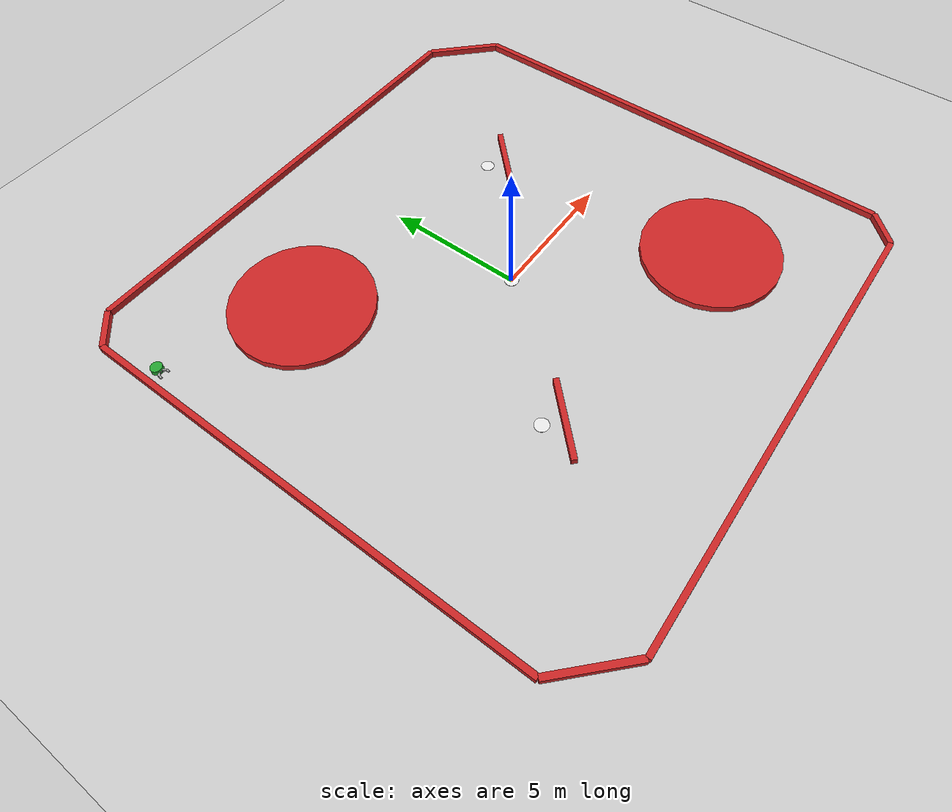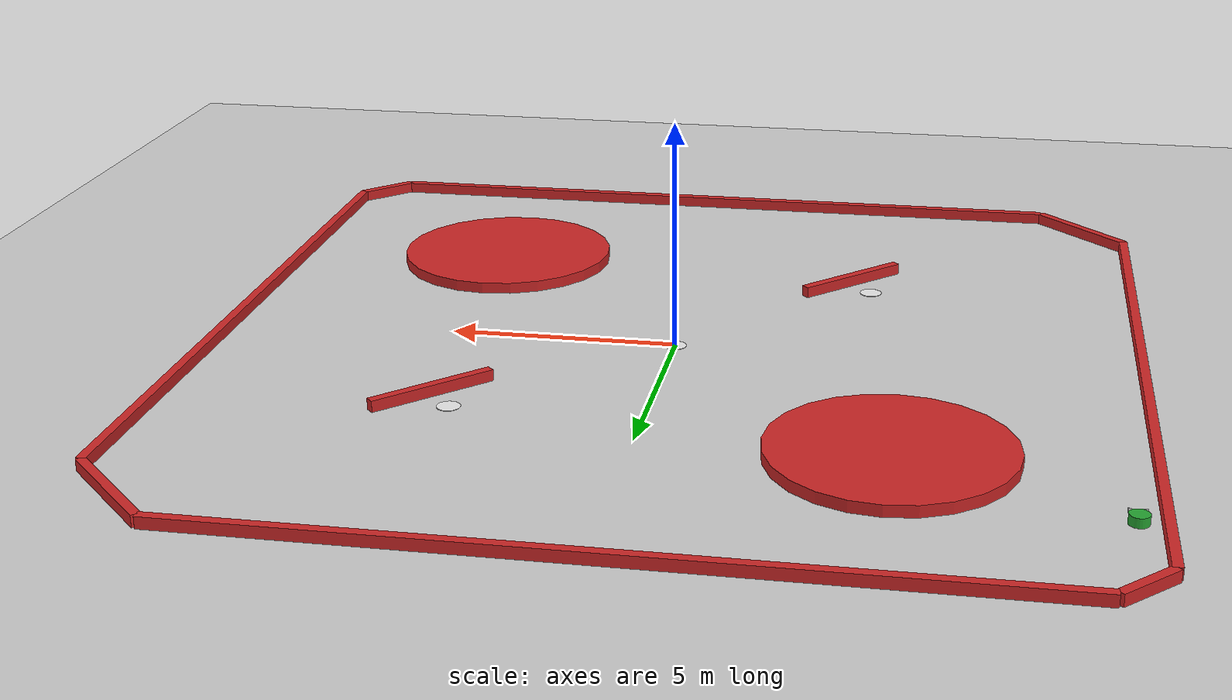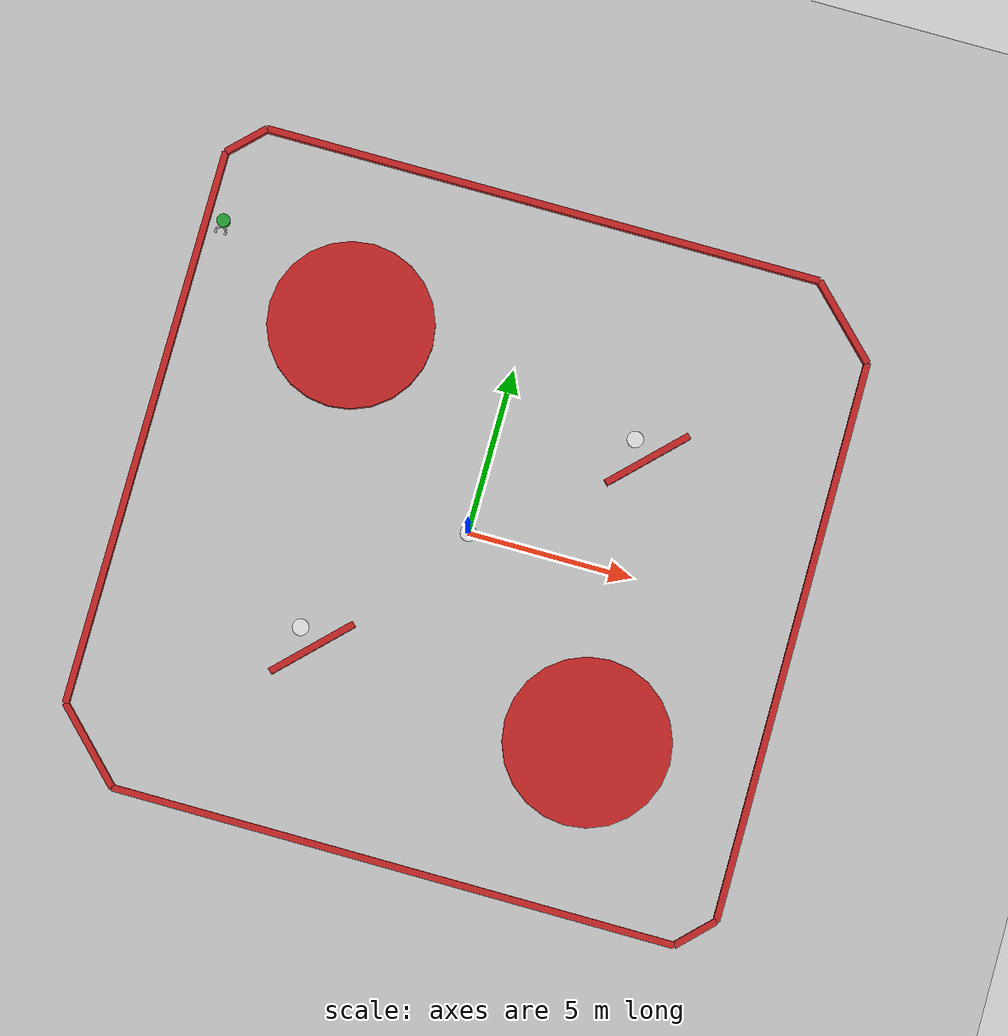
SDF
<?xml version="1.0"?>
<sdf version="1.4">
  <world name="default">
    <scene>
      <shadows>0</shadows>
    </scene>
    <!-- World Camera -->
    <gui>
      <camera name='camera_view'>
	<pose>0 0 35 0 1.57079 1.57079</pose>
      </camera>
    </gui>

    <!-- Ground -->
    <include>
      <uri>model://ground_plane</uri>
    </include>

    <!-- Global light source -->
     <include>
      <uri>model://sun</uri>
    </include>

    <!-- Robots Team A-->
    <include>
      <pose>-9.5 7 0 0 0  -1.57079</pose>
      <name>Bug</name>
      <uri>model://SDIC_GreenBug</uri>
    </include>

    <!-- Robots Team B-->

    <!-- Wall -->
    <include>
        <uri>model://TM_Wall</uri>
    </include>

  </world>
</sdf>

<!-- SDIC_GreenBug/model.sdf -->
<sdf version='1.4'>
  <!-- Robot model -->
  <model name="SDIC_Bug">
    <!-- Body elements -->
    <link name='bug'>
      <pose>0 0 .1 0 0 0</pose>
      <inertial>
	<mass>5</mass>
	<inertia>
	  <ixx>1</ixx>
	  <ixy>0</ixy>
	  <ixz>0</ixz>
	  <iyy>1</iyy>
	  <iyz>0</iyz>
	  <izz>1</izz>
	</inertia>
      </inertial>
      <collision name='collision'>
	<geometry>
	  <cylinder>
	    <radius>.2</radius>
	    <length>.2</length>
	  </cylinder>
	</geometry>
	<surface>
	  <friction>
	    <ode>
	      <mu>0.1</mu>
	      <mu2>0</mu2>
	      <slip1>0.0</slip1>
	      <slip2>0.0</slip2>
	    </ode>
	  </friction>
	</surface>
      </collision>

      <visual name='visual'>
	<geometry>
	  <cylinder>
	    <radius>.2</radius>
	    <length>.2</length>
	  </cylinder>
	</geometry>
	<material>
	  <script>
	    <uri>file://media/materials/scripts/gazebo.material</uri>
	    <name>Gazebo/Green</name>
	  </script>
	</material>
      </visual>

      <!-- Sensors -->
      <!-- Proximity sensor -->
      <sensor name="laser" type="ray">
	<pose>0 0 0.075 0 0 0 </pose>
	<ray>
	<scan>
	  <horizontal>
	    <samples>32</samples>
	    <resolution>1</resolution>
	    <min_angle>-3</min_angle>
	    <max_angle>3</max_angle>
	  </horizontal>
	</scan>
	<range>
	  <min>0.205</min>
	  <max>2.0</max>
	  <resolution>0.01</resolution>
	</range>
	<noise>
	  <type>gaussian</type>
	  <mean>0.0</mean>
	  <stddev>0.02</stddev>
	</noise>
      </ray>
      <always_on>1</always_on>
      <update_rate>25</update_rate>
      <visualize>0</visualize>
      </sensor>

      <!-- Proximity sensor -->
      <sensor name="laser_target" type="ray">
	<pose>0 0 0.25 0 0 0 </pose>
	<ray>
	<scan>
	  <horizontal>
	    <samples>32</samples>
	    <resolution>1</resolution>
	    <min_angle>-3</min_angle>
	    <max_angle>3</max_angle>
	  </horizontal>
	</scan>
	<range>
	  <min>0.26</min>
	  <max>2.5</max>
	  <resolution>0.01</resolution>
	</range>
	<noise>
	  <type>gaussian</type>
	  <mean>0.0</mean>
	  <stddev>0.02</stddev>
	</noise>
      </ray>
      <always_on>1</always_on>
      <update_rate>25</update_rate>
      <visualize>0</visualize>
      </sensor>
      <!-- Proximity sensor Gripper -->
      <sensor name="laser_gripper" type="ray">
	<pose>0.19 0 -0.02 0 0 0 </pose>
	<ray>
	<scan>
	  <horizontal>
	    <samples>16</samples>
	    <resolution>1</resolution>
	    <min_angle>-1</min_angle>
	    <max_angle>1</max_angle>
	  </horizontal>
	</scan>
	<range>
	  <min>0.0155</min>
	  <max>0.2</max>
	  <resolution>0.01</resolution>
	</range>
	<noise>
	  <type>gaussian</type>
	  <mean>0.0</mean>
	  <stddev>0.005</stddev>
	</noise>
	</ray>
	<always_on>0</always_on>
	<update_rate>25</update_rate>
	<visualize>0</visualize>
      </sensor>

    <sensor name="camera" type="camera">
      <pose>0.125 0 0.25 0 0.57 0</pose>
      <camera>
	<horizontal_fov>1.0047</horizontal_fov>
          <image>
            <width>32</width>
            <height>28</height>
          </image>
          <clip>
            <near>0.15</near>
            <far>20</far>
          </clip>
   </camera>
      <always_on>1</always_on>
      <update_rate>30</update_rate>
      <visualize>0</visualize>
    </sensor>
    </link>
`
    <include>
      <uri>model://SDIC_Gripper</uri>
      <pose>0.17 0 .08 0 0 0</pose>
    </include>

    <joint name="arm_gripper_joint" type="revolute">
      <parent>bug</parent>
      <child>SDIC_Gripper::palm</child>
      <axis>
	<limit>
	  <lower>0</lower>
	  <upper>0</upper>
	</limit>
	<xyz>0 0 1</xyz>
      </axis>
    </joint>

    <plugin name="model_push" filename="libvel_plugin.so" />
</model>
</sdf>

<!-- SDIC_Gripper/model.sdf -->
<sdf version="1.4">
  <model name="SDIC_Gripper">
    <link name="palm">
      <pose>0.0 0.0 0 0 0 0</pose>
      <inertial>
        <mass>0.002</mass>
      </inertial>
      <collision name="collision">
        <geometry>
          <box>
            <size>0.06 0.1 0.06</size>
          </box>
        </geometry>
        <surface>
	  <friction>
            <ode>
              <mu>0.1</mu>
              <mu2>0</mu2>
            </ode>
          </friction>
          <contact>
            <ode>
              <max_vel>0.0</max_vel>
            </ode>
          </contact>
        </surface>
      </collision>
      <visual name="visual">
        <geometry>
          <box>
            <size>0.06 0.1 0.06</size>
          </box>
        </geometry>
      </visual>
    </link>
    <link name="left_finger">
      <pose>0.05 0.1 0 0 0 -0.78539</pose>
      <inertial>
        <mass>0.001</mass>
	<inertia>
	  <ixx>0.001</ixx>
	  <ixy>0</ixy>
	  <ixz>0</ixz>
	  <iyy>0.001</iyy>
	  <iyz>0</iyz>
	  <izz>0.001</izz>
	</inertia>
      </inertial>
      <collision name="collision">
        <geometry>
          <box>
            <size>0.06 0.15 0.06</size>
          </box>
        </geometry>
        <surface>
          <friction>
            <ode>
              <mu>0.1</mu>
              <mu2>0</mu2>
            </ode>
          </friction>
          <contact>
            <ode>
              <max_vel>0.0</max_vel>
            </ode>
          </contact>
        </surface>
      </collision>
      <visual name="visual">
        <geometry>
          <box>
            <size>0.06 0.15 0.06</size>
          </box>
        </geometry>
      </visual>
    </link>
    <link name="left_finger_tip">
      <pose>0.168 0.15 0 0 0 1.5707</pose>
      <inertial>
        <mass>0.001</mass>
	<inertia>
	  <ixx>0.001</ixx>
	  <ixy>0</ixy>
	  <ixz>0</ixz>
	  <iyy>0.001</iyy>
	  <iyz>0</iyz>
	  <izz>0.001</izz>
	</inertia>
      </inertial>
      <collision name="collision">
        <geometry>
          <box>
            <size>0.06 0.1 0.06</size>
          </box>
        </geometry>
        <surface>
          <friction>
            <ode>
              <mu>0.1</mu>
              <mu2>0</mu2>
            </ode>
          </friction>
          <contact>
            <ode>
              <max_vel>0.0</max_vel>
            </ode>
          </contact>
        </surface>
      </collision>
      <visual name="visual">
        <geometry>
          <box>
            <size>0.06 0.1 0.06</size>
          </box>
        </geometry>
      </visual>
    </link>
    <link name="right_finger">
      <pose>0.05 -0.1 0 0 0 .78539</pose>
      <inertial>
        <mass>0.001</mass>
	<inertia>
	  <ixx>0.001</ixx>
	  <ixy>0</ixy>
	  <ixz>0</ixz>
	  <iyy>0.001</iyy>
	  <iyz>0</iyz>
	  <izz>0.001</izz>
	</inertia>
      </inertial>
      <collision name="collision">
        <geometry>
          <box>
            <size>0.06 0.15 0.06</size>
          </box>
        </geometry>
        <surface>
          <friction>
            <ode>
              <mu>0.1</mu>
              <mu2>0</mu2>
            </ode>
          </friction>
          <contact>
            <ode>
              <max_vel>0.0</max_vel>
            </ode>
          </contact>
        </surface>
      </collision>
      <visual name="visual">
        <geometry>
          <box>
            <size>0.06 0.15 0.06</size>
          </box>
        </geometry>
      </visual>
    </link>
    <link name="right_finger_tip">
      <pose>0.168 -0.15 0 0 0 1.5707</pose>
      <inertial>
        <mass>0.001</mass>
	<inertia>
	  <ixx>0.001</ixx>
	  <ixy>0</ixy>
	  <ixz>0</ixz>
	  <iyy>0.001</iyy>
	  <iyz>0</iyz>
	  <izz>0.001</izz>
	</inertia>
      </inertial>
      <collision name="collision">
        <geometry>
          <box>
            <size>0.06 0.1 0.06</size>
          </box>
        </geometry>
        <surface>
          <friction>
            <ode>
              <mu>0.1</mu>
              <mu2>0</mu2>
            </ode>
          </friction>
          <contact>
            <ode>
              <max_vel>0.0</max_vel>
            </ode>
          </contact>
        </surface>
      </collision>
      <visual name="visual">
        <geometry>
          <box>
            <size>0.06 0.1 0.06</size>
          </box>
        </geometry>
      </visual>
    </link>

    <joint name="left_finger" type="revolute">
      <pose>0 -0.075 0 0 0 0</pose>
      <child>left_finger</child>
      <parent>palm</parent>
      <axis>
        <limit><lower>-0.2</lower><upper>0.4</upper></limit>
        <xyz>0 0 -1</xyz>
      </axis>
    </joint>
    <joint name="left_finger_tip" type="revolute">
      <pose>0 0.05 0 0 0 0</pose>
      <child>left_finger_tip</child>
      <parent>left_finger</parent>
      <axis>
        <limit><lower>0</lower><upper>0.4</upper></limit>
        <xyz>0 0 -1</xyz>
      </axis>
    </joint>
    <joint name="right_finger" type="revolute">
      <pose>0 0.075 0 0 0 0</pose>
      <child>right_finger</child>
      <parent>palm</parent>
      <axis>
        <limit><lower>-0.2</lower><upper>0.4</upper></limit>
        <xyz>0 0 1</xyz>
      </axis>
    </joint>
    <joint name="right_finger_tip" type="revolute">
      <pose>0 0.05 0 0 0 0</pose>
      <child>right_finger_tip</child>
      <parent>right_finger</parent>
      <axis>
        <limit><lower>0</lower><upper>0.4</upper></limit>
        <xyz>0 0 1</xyz>
      </axis>
    </joint>

  </model>
</sdf>

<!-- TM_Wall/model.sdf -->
<sdf version='1.4'>
  <model name='Wall'>
    <link name='Wall_1'>
      <collision name='Wall_1_Collision'>
        <geometry>
          <box>
            <size>17 0.2 0.24999</size>
          </box>
        </geometry>
        <pose>0 0 0.124999 0 -0 0</pose>
      </collision>
      <visual name='Wall_1_Visual'>
        <pose>0 0 0.124999 0 -0 0</pose>
        <geometry>
          <box>
            <size>17 0.2 0.24999</size>
          </box>
        </geometry>
        <material>
          <script>
            <uri>file://media/materials/scripts/gazebo.material</uri>
            <name>Gazebo/Red</name>
          </script>
        </material>
      </visual>
      <velocity_decay>
        <linear>0</linear>
        <angular>0</angular>
      </velocity_decay>
      <pose>-10 0.5 0 0 0 -1.5708</pose>
    </link>

    <link name='Wall_2'>
      <collision name='Wall_2_Collision'>
        <geometry>
          <box>
            <size>17 0.2 0.24999</size>
          </box>
        </geometry>
        <pose>0 0 0.124999 0 -0 0</pose>
      </collision>
      <visual name='Wall_2_Visual'>
        <pose>0 0 0.124999 0 -0 0</pose>
        <geometry>
          <box>
            <size>17 0.2 0.24999</size>
          </box>
         </geometry>
        <material>
          <script>
            <uri>file://media/materials/scripts/gazebo.material</uri>
            <name>Gazebo/Red</name>
          </script>
        </material>
      </visual>
      <velocity_decay>
        <linear>0</linear>
        <angular>0</angular>
      </velocity_decay>
      <pose>0.5 -10 0 0 0 0</pose>
    </link>

 <link name='Wall_3'>
      <collision name='Wall_3_Collision'>
        <geometry>
          <box>
            <size>17 0.2 0.24999</size>
          </box>
        </geometry>
        <pose>0 0 0.124999 0 -0 0</pose>
      </collision>
      <visual name='Wall_3_Visual'>
        <pose>0 0 0.124999 0 -0 0</pose>
        <geometry>
          <box>
            <size>17 0.2 0.24999</size>
          </box>
        </geometry>
        <material>
          <script>
            <uri>file://media/materials/scripts/gazebo.material</uri>
            <name>Gazebo/Red</name>
          </script>
        </material>
      </visual>
      <velocity_decay>
        <linear>0</linear>
        <angular>0</angular>
      </velocity_decay>
      <pose>10 -0.5 0 0 0 -1.5708</pose>
    </link>

    <link name='Wall_4'>
      <collision name='Wall_4_Collision'>
        <geometry>
          <box>
            <size>17 0.2 0.24999</size>
          </box>
        </geometry>
        <pose>0 0 0.124999 0 -0 0</pose>
      </collision>
      <visual name='Wall_4_Visual'>
        <pose>0 0 0.124999 0 -0 0</pose>
        <geometry>
          <box>
            <size>17 0.2 0.24999</size>
          </box>
        </geometry>
        <material>
          <script>
            <uri>file://media/materials/scripts/gazebo.material</uri>
            <name>Gazebo/Red</name>
          </script>
        </material>
      </visual>
      <velocity_decay>
        <linear>0</linear>
        <angular>0</angular>
      </velocity_decay>
      <pose>-0.5 10 0 0 0 0</pose>
    </link>

    <link name='Wall_5'>
      <collision name='Wall_5_Collision'>
        <geometry>
          <box>
            <size> 2.828427 0.2 0.24999</size>
          </box>
        </geometry>
        <pose>0 0 0.124999 0 -0 0</pose>
      </collision>
      <visual name='Wall_5_Visual'>
        <pose>0 0 0.124999 0 -0 0</pose>
        <geometry>
          <box>
            <size>2.828427 0.2 0.24999</size>
          </box>
        </geometry>
        <material>
          <script>
            <uri>file://media/materials/scripts/gazebo.material</uri>
            <name>Gazebo/Red</name>
          </script>
        </material>
      </visual>
      <velocity_decay>
        <linear>0</linear>
        <angular>0</angular>
      </velocity_decay>
      <pose>9 9 0 0 0 -0.78539</pose>
    </link>

    <link name='Wall_6'>
      <collision name='Wall_6_Collision'>
        <geometry>
          <box>
            <size> 2.828427 0.2 0.24999</size>
          </box>
        </geometry>
        <pose>0 0 0.124999 0 -0 0</pose>
      </collision>
      <visual name='Wall_6_Visual'>
        <pose>0 0 0.124999 0 -0 0</pose>
        <geometry>
          <box>
            <size>2.828427 0.2 0.24999</size>
          </box>
        </geometry>
        <material>
          <script>
            <uri>file://media/materials/scripts/gazebo.material</uri>
            <name>Gazebo/Red</name>
          </script>
        </material>
      </visual>
      <velocity_decay>
        <linear>0</linear>
        <angular>0</angular>
      </velocity_decay>
      <pose>-9 -9 0 0 0 -0.78539</pose>
    </link>
<link name='Wall_6'>
      <collision name='Wall_6_Collision'>
        <geometry>
          <box>
            <size> 2.828427 0.2 0.24999</size>
          </box>
        </geometry>
        <pose>0 0 0.124999 0 -0 0</pose>
      </collision>
      <visual name='Wall_6_Visual'>
        <pose>0 0 0.124999 0 -0 0</pose>
        <geometry>
          <box>
            <size>2.828427 0.2 0.24999</size>
          </box>
        </geometry>
        <material>
          <script>
            <uri>file://media/materials/scripts/gazebo.material</uri>
            <name>Gazebo/Red</name>
          </script>
        </material>
      </visual>
      <velocity_decay>
        <linear>0</linear>
        <angular>0</angular>
      </velocity_decay>
      <pose>-9 -9 0 0 0 -0.78539</pose>
    </link>

    <link name='Wall_7'>
      <collision name='Wall_7_Collision'>
        <geometry>
          <box>
            <size> 1.414215 0.2 0.24999</size>
          </box>
        </geometry>
        <pose>0 0 0.124999 0 -0 0</pose>
      </collision>
      <visual name='Wall_7_Visual'>
        <pose>0 0 0.124999 0 -0 0</pose>
        <geometry>
          <box>
            <size>1.414215 0.2 0.24999</size>
          </box>
        </geometry>
        <material>
          <script>
            <uri>file://media/materials/scripts/gazebo.material</uri>
            <name>Gazebo/Red</name>
          </script>
        </material>
      </visual>
      <velocity_decay>
        <linear>0</linear>
        <angular>0</angular>
      </velocity_decay>
      <pose>-9.5 9.5 0 0 0 0.78539</pose>
    </link>

    <link name='Wall_8'>
      <collision name='Wall_8_Collision'>
        <geometry>
          <box>
            <size> 1.414215 0.2 0.24999</size>
          </box>
        </geometry>
        <pose>0 0 0.124999 0 -0 0</pose>
      </collision>
      <visual name='Wall_7_Visual'>
        <pose>0 0 0.124999 0 -0 0</pose>
        <geometry>
          <box>
            <size>1.414215 0.2 0.24999</size>
          </box>
        </geometry>
        <material>
          <script>
            <uri>file://media/materials/scripts/gazebo.material</uri>
            <name>Gazebo/Red</name>
          </script>
        </material>
      </visual>
      <velocity_decay>
        <linear>0</linear>
        <angular>0</angular>
      </velocity_decay>
      <pose> 9.5 -9.5 0 0 0 0.78539</pose>
    </link>

<link name='Wall_9'>
      <collision name='Wall_9_Collision'>
        <geometry>
          <box>
            <size> 2.828430 0.2 0.24999</size>
          </box>
        </geometry>
        <pose>0 0 0.124999 0 -0 0</pose>
      </collision>
      <visual name='Wall_9_Visual'>
        <pose>0 0 0.124999 0 -0 0</pose>
        <geometry>
          <box>
            <size>2.828430 0.2 0.24999</size>
          </box>
        </geometry>
        <material>
          <script>
            <uri>file://media/materials/scripts/gazebo.material</uri>
            <name>Gazebo/Red</name>
          </script>
        </material>
      </visual>
      <velocity_decay>
        <linear>0</linear>
        <angular>0</angular>
      </velocity_decay>
      <pose>-3.5 -4.5 0 0 0 0.78539</pose>
    </link>

    <link name='Obstacle_1'>
      <collision name='Obstacle_1_Collision'>
        <geometry>
          <cylinder>
            <radius> 2.5 </radius>
	    <length> 0.24999 </length>
          </cylinder>
        </geometry>
        <pose>0 0 0.124999 0 -0 0</pose>
      </collision>
      <visual name='Obstacle_1_Visual'>
        <pose>0 0 0.124999 0 -0 0</pose>
        <geometry>
	  <cylinder>
            <radius> 2.5 </radius>
	    <length> 0.24999 </length>
          </cylinder>
	</geometry>
        <material>
          <script>
            <uri>file://media/materials/scripts/gazebo.material</uri>
            <name>Gazebo/Red</name>
          </script>
        </material>
      </visual>
      <velocity_decay>
        <linear>0</linear>
        <angular>0</angular>
      </velocity_decay>
      <pose> 5 -5 0 0 0 0</pose>
    </link>
    <link name='Obstacle_2'>
      <collision name='Obstacle_2_Collision'>
        <geometry>
          <cylinder>
            <radius> 2.5 </radius>
	    <length> 0.24999 </length>
          </cylinder>
        </geometry>
        <pose>0 0 0.124999 0 -0 0</pose>
      </collision>
      <visual name='Obstacle_2_Visual'>
        <pose>0 0 0.124999 0 -0 0</pose>
        <geometry>
	  <cylinder>
            <radius> 2.5 </radius>
	    <length> 0.24999 </length>
          </cylinder>
	</geometry>
        <material>
          <script>
            <uri>file://media/materials/scripts/gazebo.material</uri>
            <name>Gazebo/Red</name>
          </script>
        </material>
      </visual>
      <velocity_decay>
        <linear>0</linear>
        <angular>0</angular>
      </velocity_decay>
      <pose> -5 5 0 0 0 0</pose>
    </link>

<link name='Wall_10'>
      <collision name='Wall_10_Collision'>
        <geometry>
          <box>
            <size> 2.828430 0.2 0.24999</size>
          </box>
        </geometry>
        <pose>0 0 0.124999 0 -0 0</pose>
      </collision>
      <visual name='Wall_10_Visual'>
        <pose>0 0 0.124999 0 -0 0</pose>
        <geometry>
          <box>
            <size>2.828430 0.2 0.24999</size>
          </box>
        </geometry>
        <material>
          <script>
            <uri>file://media/materials/scripts/gazebo.material</uri>
            <name>Gazebo/Red</name>
          </script>
        </material>
      </visual>
      <velocity_decay>
        <linear>0</linear>
        <angular>0</angular>
      </velocity_decay>
      <pose> 4.5 3.5 0 0 0 0.78539</pose>
    </link>
    <link name='Target_1'>
      <collision name='Target_1_Collision'>
        <geometry>
          <cylinder>
	    <radius> 0.24999 </radius>
	    <length> 0.24999 </length>
	  </cylinder>
        </geometry>
        <pose>0 0 0.34999 0 -0 0</pose>
      </collision>
      <visual name='Target_1_Visual'>
        <pose>0 0 0 0 0 0</pose>
        <geometry>
         <cylinder>
            <radius> 0.24999 </radius>
	    <length> 0.01 </length>
          </cylinder>
	</geometry>
        <material>
          <script>
            <uri>file://media/materials/scripts/gazebo.material</uri>
            <name>Gazebo/White</name>
          </script>
        </material>
      </visual>
      <velocity_decay>
        <linear>0</linear>
        <angular>0</angular>
      </velocity_decay>
      <pose> 4 4 0 0 0 0</pose>
    </link>

 <link name='Target_2'>
      <collision name='Target2_Collision'>
        <geometry>
          <cylinder>
            <radius> 0.24999 </radius>
	    <length> 0.24999 </length>
          </cylinder>
        </geometry>
        <pose>0 0 0.34999 0 -0 0</pose>
      </collision>
      <visual name='Target_2_Visual'>
        <pose>0 0 0 0 0 0</pose>
        <geometry>
         <cylinder>
            <radius> 0.24999 </radius>
	    <length> 0.01 </length>
          </cylinder>
	</geometry>
        <material>
          <script>
            <uri>file://media/materials/scripts/gazebo.material</uri>
            <name>Gazebo/White</name>
          </script>
        </material>
      </visual>
      <velocity_decay>
        <linear>0</linear>
        <angular>0</angular>
      </velocity_decay>
      <pose> -4 -4 0 0 0 0</pose>
    </link>

    <link name='Target_3'>
      <collision name='Target2_Collision'>
        <geometry>
          <cylinder>
            <radius> 0.24999 </radius>
	    <length> 0.24999 </length>
          </cylinder>
        </geometry>
        <pose>0 0 0.34999 0 0 0</pose>
      </collision>
      <visual name='Target_2_Visual'>
        <pose>0 0 0 0 0 0</pose>
        <geometry>
         <cylinder>
            <radius> 0.24999 </radius>
	    <length> 0.01 </length>
          </cylinder>
	</geometry>
        <material>
          <script>
            <uri>file://media/materials/scripts/gazebo.material</uri>
            <name>Gazebo/White</name>
          </script>
        </material>
      </visual>
      <velocity_decay>
        <linear>0</linear>
        <angular>0</angular>
      </velocity_decay>
      <pose> 0 0 0 0 0 0</pose>
    </link>

    <static>1</static>
  </model>
</sdf>
